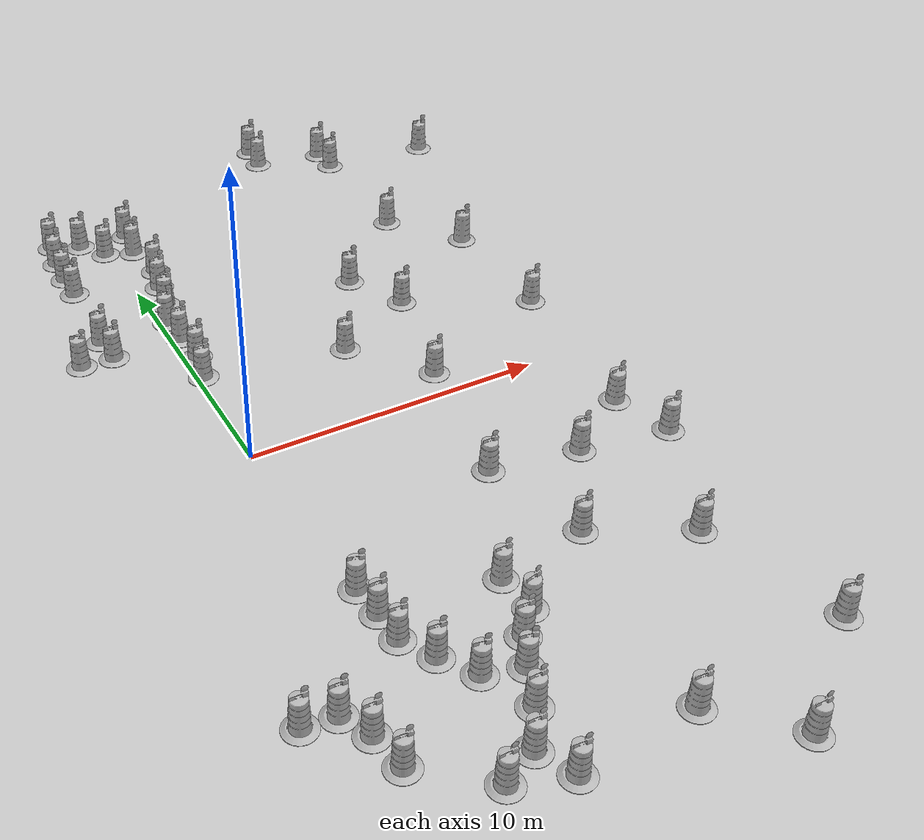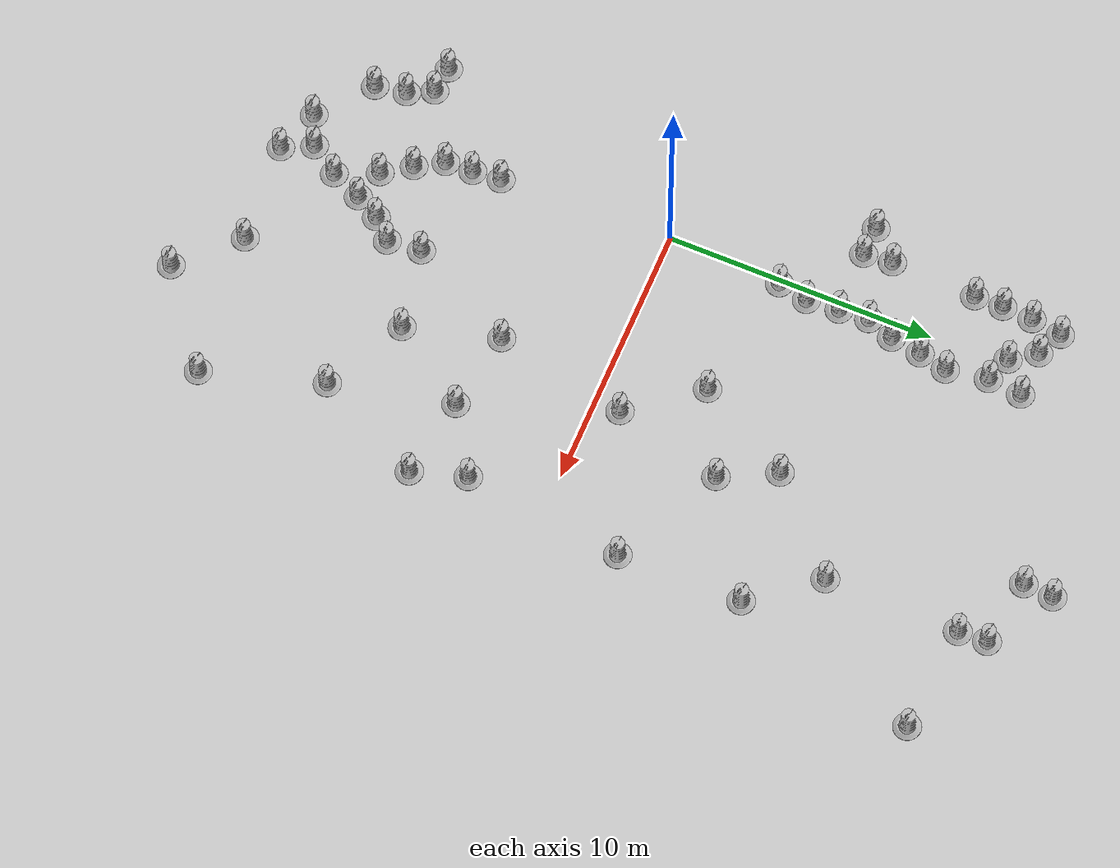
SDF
<sdf version="1.4">
 <world name="IGVC_Advanced_Course">
  <model name="Construction Barrel">
   <link name="link">
    <inertial>
     <pose>0 0 0.4 0 -0 0</pose>
     <mass>500</mass>
     <inertia><ixx>51.2096</ixx><iyy>51.2096</iyy><izz>25</izz><ixy>0</ixy><ixz>0</ixz><iyz>0</iyz></inertia>
    </inertial>
    <collision name="collision">
     <geometry><mesh><uri>model://construction_barrel/meshes/construction_barrel.dae</uri></mesh></geometry>
    </collision>
    <visual name="visual">
     <geometry><mesh><uri>model://construction_barrel/meshes/construction_barrel.dae</uri></mesh></geometry>
    </visual>
    <velocity_decay><linear>0</linear><angular>0</angular></velocity_decay>
   </link>
   <pose>2.90937 -10.9413 0.081 2e-06 1.05879e-22 -0.206638</pose>
   <static>0</static>
  </model>
  <model name="Construction Barrel_0">
   <link name="link">
    <inertial>
     <pose>0 0 0.4 0 -0 0</pose>
     <mass>500</mass>
     <inertia><ixx>51.2096</ixx><iyy>51.2096</iyy><izz>25</izz><ixy>0</ixy><ixz>0</ixz><iyz>0</iyz></inertia>
    </inertial>
    <collision name="collision">
     <geometry><mesh><uri>model://construction_barrel/meshes/construction_barrel.dae</uri></mesh></geometry>
    </collision>
    <visual name="visual">
     <geometry><mesh><uri>model://construction_barrel/meshes/construction_barrel.dae</uri></mesh></geometry>
    </visual>
    <velocity_decay><linear>0</linear><angular>0</angular></velocity_decay>
   </link>
   <pose>3.4058 -10.0126 0.080999 -2e-06 -3e-06 -0.053736</pose>
   <static>0</static>
  </model>
  <model name="Construction Barrel_1">
   <link name="link">
    <inertial>
     <pose>0 0 0.4 0 -0 0</pose>
     <mass>500</mass>
     <inertia><ixx>51.2096</ixx><iyy>51.2096</iyy><izz>25</izz><ixy>0</ixy><ixz>0</ixz><iyz>0</iyz></inertia>
    </inertial>
    <collision name="collision">
     <geometry><mesh><uri>model://construction_barrel/meshes/construction_barrel.dae</uri></mesh></geometry>
    </collision>
    <visual name="visual">
     <geometry><mesh><uri>model://construction_barrel/meshes/construction_barrel.dae</uri></mesh></geometry>
    </visual>
    <velocity_decay><linear>0</linear><angular>0</angular></velocity_decay>
   </link>
   <pose>4.10507 -9.27505 0.080999 -1e-06 -2e-06 0.216739</pose>
   <static>0</static>
  </model>
  <model name="Construction Barrel_2">
   <link name="link">
    <inertial>
     <pose>0 0 0.4 0 -0 0</pose>
     <mass>500</mass>
     <inertia><ixx>51.2096</ixx><iyy>51.2096</iyy><izz>25</izz><ixy>0</ixy><ixz>0</ixz><iyz>0</iyz></inertia>
    </inertial>
    <collision name="collision">
     <geometry><mesh><uri>model://construction_barrel/meshes/construction_barrel.dae</uri></mesh></geometry>
    </collision>
    <visual name="visual">
     <geometry><mesh><uri>model://construction_barrel/meshes/construction_barrel.dae</uri></mesh></geometry>
    </visual>
    <velocity_decay><linear>0</linear><angular>0</angular></velocity_decay>
   </link>
   <pose>3.97762 -7.99254 0.080999 -1e-06 -3e-06 -0.029562</pose>
   <static>0</static>
  </model>
  <model name="Construction Barrel_3">
   <link name="link">
    <inertial>
     <pose>0 0 0.4 0 -0 0</pose>
     <mass>500</mass>
     <inertia><ixx>51.2096</ixx><iyy>51.2096</iyy><izz>25</izz><ixy>0</ixy><ixz>0</ixz><iyz>0</iyz></inertia>
    </inertial>
    <collision name="collision">
     <geometry><mesh><uri>model://construction_barrel/meshes/construction_barrel.dae</uri></mesh></geometry>
    </collision>
    <visual name="visual">
     <geometry><mesh><uri>model://construction_barrel/meshes/construction_barrel.dae</uri></mesh></geometry>
    </visual>
    <velocity_decay><linear>0</linear><angular>0</angular></velocity_decay>
   </link>
   <pose>0.55482 -13.7328 0.080999 -1e-06 -3e-06 -0.003573</pose>
   <static>0</static>
  </model>
  <model name="Construction Barrel_4">
   <link name="link">
    <inertial>
     <pose>0 0 0.4 0 -0 0</pose>
     <mass>500</mass>
     <inertia><ixx>51.2096</ixx><iyy>51.2096</iyy><izz>25</izz><ixy>0</ixy><ixz>0</ixz><iyz>0</iyz></inertia>
    </inertial>
    <collision name="collision">
     <geometry><mesh><uri>model://construction_barrel/meshes/construction_barrel.dae</uri></mesh></geometry>
    </collision>
    <visual name="visual">
     <geometry><mesh><uri>model://construction_barrel/meshes/construction_barrel.dae</uri></mesh></geometry>
    </visual>
    <velocity_decay><linear>0</linear><angular>0</angular></velocity_decay>
   </link>
   <pose>1.67439 -13.2098 0.080999 -2e-06 -4e-06 -0.033039</pose>
   <static>0</static>
  </model>
  <model name="Construction Barrel_5">
   <link name="link">
    <inertial>
     <pose>0 0 0.4 0 -0 0</pose>
     <mass>500</mass>
     <inertia><ixx>51.2096</ixx><iyy>51.2096</iyy><izz>25</izz><ixy>0</ixy><ixz>0</ixz><iyz>0</iyz></inertia>
    </inertial>
    <collision name="collision">
     <geometry><mesh><uri>model://construction_barrel/meshes/construction_barrel.dae</uri></mesh></geometry>
    </collision>
    <visual name="visual">
     <geometry><mesh><uri>model://construction_barrel/meshes/construction_barrel.dae</uri></mesh></geometry>
    </visual>
    <velocity_decay><linear>0</linear><angular>0</angular></velocity_decay>
   </link>
   <pose>2.21677 -14.2989 0.080999 -2e-06 -4e-06 -0.077354</pose>
   <static>0</static>
  </model>
  <model name="Construction Barrel_6">
   <link name="link">
    <inertial>
     <pose>0 0 0.4 0 -0 0</pose>
     <mass>500</mass>
     <inertia><ixx>51.2096</ixx><iyy>51.2096</iyy><izz>25</izz><ixy>0</ixy><ixz>0</ixz><iyz>0</iyz></inertia>
    </inertial>
    <collision name="collision">
     <geometry><mesh><uri>model://construction_barrel/meshes/construction_barrel.dae</uri></mesh></geometry>
    </collision>
    <visual name="visual">
     <geometry><mesh><uri>model://construction_barrel/meshes/construction_barrel.dae</uri></mesh></geometry>
    </visual>
    <velocity_decay><linear>0</linear><angular>0</angular></velocity_decay>
   </link>
   <pose>7.98804 -15.9905 0.080999 5e-06 6.61744e-24 -0.006168</pose>
   <static>0</static>
  </model>
  <model name="Construction Barrel_7">
   <link name="link">
    <inertial>
     <pose>0 0 0.4 0 -0 0</pose>
     <mass>500</mass>
     <inertia><ixx>51.2096</ixx><iyy>51.2096</iyy><izz>25</izz><ixy>0</ixy><ixz>0</ixz><iyz>0</iyz></inertia>
    </inertial>
    <collision name="collision">
     <geometry><mesh><uri>model://construction_barrel/meshes/construction_barrel.dae</uri></mesh></geometry>
    </collision>
    <visual name="visual">
     <geometry><mesh><uri>model://construction_barrel/meshes/construction_barrel.dae</uri></mesh></geometry>
    </visual>
    <velocity_decay><linear>0</linear><angular>0</angular></velocity_decay>
   </link>
   <pose>5.97341 -14.0029 0.080999 3e-06 1e-06 -0.061146</pose>
   <static>0</static>
  </model>
  <model name="Construction Barrel_8">
   <link name="link">
    <inertial>
     <pose>0 0 0.4 0 -0 0</pose>
     <mass>500</mass>
     <inertia><ixx>51.2096</ixx><iyy>51.2096</iyy><izz>25</izz><ixy>0</ixy><ixz>0</ixz><iyz>0</iyz></inertia>
    </inertial>
    <collision name="collision">
     <geometry><mesh><uri>model://construction_barrel/meshes/construction_barrel.dae</uri></mesh></geometry>
    </collision>
    <visual name="visual">
     <geometry><mesh><uri>model://construction_barrel/meshes/construction_barrel.dae</uri></mesh></geometry>
    </visual>
    <velocity_decay><linear>0</linear><angular>0</angular></velocity_decay>
   </link>
   <pose>11.3381 -13.3903 0.080999 0 -3e-06 -0.1961</pose>
   <static>0</static>
  </model>
  <model name="Construction Barrel_30">
   <link name="link">
    <inertial>
     <pose>0 0 0.4 0 -0 0</pose>
     <mass>500</mass>
     <inertia><ixx>51.2096</ixx><iyy>51.2096</iyy><izz>25</izz><ixy>0</ixy><ixz>0</ixz><iyz>0</iyz></inertia>
    </inertial>
    <collision name="collision">
     <geometry><mesh><uri>model://construction_barrel/meshes/construction_barrel.dae</uri></mesh></geometry>
    </collision>
    <visual name="visual">
     <geometry><mesh><uri>model://construction_barrel/meshes/construction_barrel.dae</uri></mesh></geometry>
    </visual>
    <velocity_decay><linear>0</linear><angular>0</angular></velocity_decay>
   </link>
   <pose>6.00139 -3.99795 0.081 -1e-06 -2e-06 -0.034864</pose>
   <static>0</static>
  </model>
  <model name="Construction Barrel_31">
   <link name="link">
    <inertial>
     <pose>0 0 0.4 0 -0 0</pose>
     <mass>500</mass>
     <inertia><ixx>51.2096</ixx><iyy>51.2096</iyy><izz>25</izz><ixy>0</ixy><ixz>0</ixz><iyz>0</iyz></inertia>
    </inertial>
    <collision name="collision">
     <geometry><mesh><uri>model://construction_barrel/meshes/construction_barrel.dae</uri></mesh></geometry>
    </collision>
    <visual name="visual">
     <geometry><mesh><uri>model://construction_barrel/meshes/construction_barrel.dae</uri></mesh></geometry>
    </visual>
    <velocity_decay><linear>0</linear><angular>0</angular></velocity_decay>
   </link>
   <pose>6.98086 -7.43129 0.080999 -1e-06 -3e-06 -0.013448</pose>
   <static>0</static>
  </model>
  <model name="Construction Barrel_32">
   <link name="link">
    <inertial>
     <pose>0 0 0.4 0 -0 0</pose>
     <mass>500</mass>
     <inertia><ixx>51.2096</ixx><iyy>51.2096</iyy><izz>25</izz><ixy>0</ixy><ixz>0</ixz><iyz>0</iyz></inertia>
    </inertial>
    <collision name="collision">
     <geometry><mesh><uri>model://construction_barrel/meshes/construction_barrel.dae</uri></mesh></geometry>
    </collision>
    <visual name="visual">
     <geometry><mesh><uri>model://construction_barrel/meshes/construction_barrel.dae</uri></mesh></geometry>
    </visual>
    <velocity_decay><linear>0</linear><angular>0</angular></velocity_decay>
   </link>
   <pose>8.94769 -4.48615 0.080999 -1e-06 -3e-06 -0.121942</pose>
   <static>0</static>
  </model>
  <model name="Construction Barrel_33">
   <link name="link">
    <inertial>
     <pose>0 0 0.4 0 -0 0</pose>
     <mass>500</mass>
     <inertia><ixx>51.2096</ixx><iyy>51.2096</iyy><izz>25</izz><ixy>0</ixy><ixz>0</ixz><iyz>0</iyz></inertia>
    </inertial>
    <collision name="collision">
     <geometry><mesh><uri>model://construction_barrel/meshes/construction_barrel.dae</uri></mesh></geometry>
    </collision>
    <visual name="visual">
     <geometry><mesh><uri>model://construction_barrel/meshes/construction_barrel.dae</uri></mesh></geometry>
    </visual>
    <velocity_decay><linear>0</linear><angular>0</angular></velocity_decay>
   </link>
   <pose>9.99154 -8.99122 0.080999 -1e-06 -5e-06 -0.041963</pose>
   <static>0</static>
  </model>
  <model name="Construction Barrel_34">
   <link name="link">
    <inertial>
     <pose>0 0 0.4 0 -0 0</pose>
     <mass>500</mass>
     <inertia><ixx>51.2096</ixx><iyy>51.2096</iyy><izz>25</izz><ixy>0</ixy><ixz>0</ixz><iyz>0</iyz></inertia>
    </inertial>
    <collision name="collision">
     <geometry><mesh><uri>model://construction_barrel/meshes/construction_barrel.dae</uri></mesh></geometry>
    </collision>
    <visual name="visual">
     <geometry><mesh><uri>model://construction_barrel/meshes/construction_barrel.dae</uri></mesh></geometry>
    </visual>
    <velocity_decay><linear>0</linear><angular>0</angular></velocity_decay>
   </link>
   <pose>11.3293 -2.97512 0.080999 4e-06 -2.64698e-23 0.058727</pose>
   <static>0</static>
  </model>
  <model name="Construction Barrel_37">
   <link name="link">
    <inertial>
     <pose>0 0 0.4 0 -0 0</pose>
     <mass>500</mass>
     <inertia><ixx>51.2096</ixx><iyy>51.2096</iyy><izz>25</izz><ixy>0</ixy><ixz>0</ixz><iyz>0</iyz></inertia>
    </inertial>
    <collision name="collision">
     <geometry><mesh><uri>model://construction_barrel/meshes/construction_barrel.dae</uri></mesh></geometry>
    </collision>
    <visual name="visual">
     <geometry><mesh><uri>model://construction_barrel/meshes/construction_barrel.dae</uri></mesh></geometry>
    </visual>
    <velocity_decay><linear>0</linear><angular>0</angular></velocity_decay>
   </link>
   <pose>11.9056 7.62328 0.080999 3e-06 1.05879e-22 -0.225591</pose>
   <static>0</static>
  </model>
  <model name="Construction Barrel_38">
   <link name="link">
    <inertial>
     <pose>0 0 0.4 0 -0 0</pose>
     <mass>500</mass>
     <inertia><ixx>51.2096</ixx><iyy>51.2096</iyy><izz>25</izz><ixy>0</ixy><ixz>0</ixz><iyz>0</iyz></inertia>
    </inertial>
    <collision name="collision">
     <geometry><mesh><uri>model://construction_barrel/meshes/construction_barrel.dae</uri></mesh></geometry>
    </collision>
    <visual name="visual">
     <geometry><mesh><uri>model://construction_barrel/meshes/construction_barrel.dae</uri></mesh></geometry>
    </visual>
    <velocity_decay><linear>0</linear><angular>0</angular></velocity_decay>
   </link>
   <pose>7.94259 5.03609 0.080999 2e-06 5.29396e-23 -0.127299</pose>
   <static>0</static>
  </model>
  <model name="Construction Barrel_39">
   <link name="link">
    <inertial>
     <pose>0 0 0.4 0 -0 0</pose>
     <mass>500</mass>
     <inertia><ixx>51.2096</ixx><iyy>51.2096</iyy><izz>25</izz><ixy>0</ixy><ixz>0</ixz><iyz>0</iyz></inertia>
    </inertial>
    <collision name="collision">
     <geometry><mesh><uri>model://construction_barrel/meshes/construction_barrel.dae</uri></mesh></geometry>
    </collision>
    <visual name="visual">
     <geometry><mesh><uri>model://construction_barrel/meshes/construction_barrel.dae</uri></mesh></geometry>
    </visual>
    <velocity_decay><linear>0</linear><angular>0</angular></velocity_decay>
   </link>
   <pose>6.91708 7.04576 0.080997 -3e-06 -6e-06 -0.171022</pose>
   <static>0</static>
  </model>
  <model name="Construction Barrel_40">
   <link name="link">
    <inertial>
     <pose>0 0 0.4 0 -0 0</pose>
     <mass>500</mass>
     <inertia><ixx>51.2096</ixx><iyy>51.2096</iyy><izz>25</izz><ixy>0</ixy><ixz>0</ixz><iyz>0</iyz></inertia>
    </inertial>
    <collision name="collision">
     <geometry><mesh><uri>model://construction_barrel/meshes/construction_barrel.dae</uri></mesh></geometry>
    </collision>
    <visual name="visual">
     <geometry><mesh><uri>model://construction_barrel/meshes/construction_barrel.dae</uri></mesh></geometry>
    </visual>
    <velocity_decay><linear>0</linear><angular>0</angular></velocity_decay>
   </link>
   <pose>10.0052 10.0115 0.080999 -1e-06 -3e-06 -0.002227</pose>
   <static>0</static>
  </model>
  <model name="Construction Barrel_41">
   <link name="link">
    <inertial>
     <pose>0 0 0.4 0 -0 0</pose>
     <mass>500</mass>
     <inertia><ixx>51.2096</ixx><iyy>51.2096</iyy><izz>25</izz><ixy>0</ixy><ixz>0</ixz><iyz>0</iyz></inertia>
    </inertial>
    <collision name="collision">
     <geometry><mesh><uri>model://construction_barrel/meshes/construction_barrel.dae</uri></mesh></geometry>
    </collision>
    <visual name="visual">
     <geometry><mesh><uri>model://construction_barrel/meshes/construction_barrel.dae</uri></mesh></geometry>
    </visual>
    <velocity_decay><linear>0</linear><angular>0</angular></velocity_decay>
   </link>
   <pose>11.9401 -4.96461 0.080999 4e-06 1e-06 -0.112681</pose>
   <static>0</static>
  </model>
  <model name="Construction Barrel_46">
   <link name="link">
    <inertial>
     <pose>0 0 0.4 0 -0 0</pose>
     <mass>500</mass>
     <inertia><ixx>51.2096</ixx><iyy>51.2096</iyy><izz>25</izz><ixy>0</ixy><ixz>0</ixz><iyz>0</iyz></inertia>
    </inertial>
    <collision name="collision">
     <geometry><mesh><uri>model://construction_barrel/meshes/construction_barrel.dae</uri></mesh></geometry>
    </collision>
    <visual name="visual">
     <geometry><mesh><uri>model://construction_barrel/meshes/construction_barrel.dae</uri></mesh></geometry>
    </visual>
    <velocity_decay><linear>0</linear><angular>0</angular></velocity_decay>
   </link>
   <pose>4.95895 3.48135 0.080999 3e-06 -2.64698e-23 -0.07424</pose>
   <static>0</static>
  </model>
  <model name="Construction Barrel_48">
   <link name="link">
    <inertial>
     <pose>0 0 0.4 0 -0 0</pose>
     <mass>500</mass>
     <inertia><ixx>51.2096</ixx><iyy>51.2096</iyy><izz>25</izz><ixy>0</ixy><ixz>0</ixz><iyz>0</iyz></inertia>
    </inertial>
    <collision name="collision">
     <geometry><mesh><uri>model://construction_barrel/meshes/construction_barrel.dae</uri></mesh></geometry>
    </collision>
    <visual name="visual">
     <geometry><mesh><uri>model://construction_barrel/meshes/construction_barrel.dae</uri></mesh></geometry>
    </visual>
    <velocity_decay><linear>0</linear><angular>0</angular></velocity_decay>
   </link>
   <pose>11.9909 3.00122 0.080999 4e-06 2.64698e-23 -0.051828</pose>
   <static>0</static>
  </model>
  <model name="Construction Barrel_49">
   <link name="link">
    <inertial>
     <pose>0 0 0.4 0 -0 0</pose>
     <mass>500</mass>
     <inertia><ixx>51.2096</ixx><iyy>51.2096</iyy><izz>25</izz><ixy>0</ixy><ixz>0</ixz><iyz>0</iyz></inertia>
    </inertial>
    <collision name="collision">
     <geometry><mesh><uri>model://construction_barrel/meshes/construction_barrel.dae</uri></mesh></geometry>
    </collision>
    <visual name="visual">
     <geometry><mesh><uri>model://construction_barrel/meshes/construction_barrel.dae</uri></mesh></geometry>
    </visual>
    <velocity_decay><linear>0</linear><angular>0</angular></velocity_decay>
   </link>
   <pose>6.94748 0.957988 0.080999 -1e-06 -2e-06 -0.018603</pose>
   <static>0</static>
  </model>
  <model name="Construction Barrel_62">
   <link name="link">
    <inertial>
     <pose>0 0 0.4 0 -0 0</pose>
     <mass>500</mass>
     <inertia><ixx>51.2096</ixx><iyy>51.2096</iyy><izz>25</izz><ixy>0</ixy><ixz>0</ixz><iyz>0</iyz></inertia>
    </inertial>
    <collision name="collision">
     <geometry><mesh><uri>model://construction_barrel/meshes/construction_barrel.dae</uri></mesh></geometry>
    </collision>
    <visual name="visual">
     <geometry><mesh><uri>model://construction_barrel/meshes/construction_barrel.dae</uri></mesh></geometry>
    </visual>
    <velocity_decay><linear>0</linear><angular>0</angular></velocity_decay>
   </link>
   <pose>0.297624 -6.48419 0.080999 4e-06 2.11758e-22 -0.258614</pose>
   <static>0</static>
  </model>
  <model name="Construction Barrel_63">
   <link name="link">
    <inertial>
     <pose>0 0 0.4 0 -0 0</pose>
     <mass>500</mass>
     <inertia><ixx>51.2096</ixx><iyy>51.2096</iyy><izz>25</izz><ixy>0</ixy><ixz>0</ixz><iyz>0</iyz></inertia>
    </inertial>
    <collision name="collision">
     <geometry><mesh><uri>model://construction_barrel/meshes/construction_barrel.dae</uri></mesh></geometry>
    </collision>
    <visual name="visual">
     <geometry><mesh><uri>model://construction_barrel/meshes/construction_barrel.dae</uri></mesh></geometry>
    </visual>
    <velocity_decay><linear>0</linear><angular>0</angular></velocity_decay>
   </link>
   <pose>0.392312 -7.55312 0.081 2e-06 6.61744e-24 -0.029276</pose>
   <static>0</static>
  </model>
  <model name="Construction Barrel_64">
   <link name="link">
    <inertial>
     <pose>0 0 0.4 0 -0 0</pose>
     <mass>500</mass>
     <inertia><ixx>51.2096</ixx><iyy>51.2096</iyy><izz>25</izz><ixy>0</ixy><ixz>0</ixz><iyz>0</iyz></inertia>
    </inertial>
    <collision name="collision">
     <geometry><mesh><uri>model://construction_barrel/meshes/construction_barrel.dae</uri></mesh></geometry>
    </collision>
    <visual name="visual">
     <geometry><mesh><uri>model://construction_barrel/meshes/construction_barrel.dae</uri></mesh></geometry>
    </visual>
    <velocity_decay><linear>0</linear><angular>0</angular></velocity_decay>
   </link>
   <pose>0.442275 -8.5868 0.080999 -1e-06 -3e-06 -0.097452</pose>
   <static>0</static>
  </model>
  <model name="Construction Barrel_65">
   <link name="link">
    <inertial>
     <pose>0 0 0.4 0 -0 0</pose>
     <mass>500</mass>
     <inertia><ixx>51.2096</ixx><iyy>51.2096</iyy><izz>25</izz><ixy>0</ixy><ixz>0</ixz><iyz>0</iyz></inertia>
    </inertial>
    <collision name="collision">
     <geometry><mesh><uri>model://construction_barrel/meshes/construction_barrel.dae</uri></mesh></geometry>
    </collision>
    <visual name="visual">
     <geometry><mesh><uri>model://construction_barrel/meshes/construction_barrel.dae</uri></mesh></geometry>
    </visual>
    <velocity_decay><linear>0</linear><angular>0</angular></velocity_decay>
   </link>
   <pose>1.03397 -9.57755 0.080999 -1e-06 -2e-06 -0.109799</pose>
   <static>0</static>
  </model>
  <model name="Construction Barrel_66">
   <link name="link">
    <inertial>
     <pose>0 0 0.4 0 -0 0</pose>
     <mass>500</mass>
     <inertia><ixx>51.2096</ixx><iyy>51.2096</iyy><izz>25</izz><ixy>0</ixy><ixz>0</ixz><iyz>0</iyz></inertia>
    </inertial>
    <collision name="collision">
     <geometry><mesh><uri>model://construction_barrel/meshes/construction_barrel.dae</uri></mesh></geometry>
    </collision>
    <visual name="visual">
     <geometry><mesh><uri>model://construction_barrel/meshes/construction_barrel.dae</uri></mesh></geometry>
    </visual>
    <velocity_decay><linear>0</linear><angular>0</angular></velocity_decay>
   </link>
   <pose>1.73578 -10.5973 0.081 0 -1e-06 -0.170226</pose>
   <static>0</static>
  </model>
  <model name="Construction Barrel_67">
   <link name="link">
    <inertial>
     <pose>0 0 0.4 0 -0 0</pose>
     <mass>500</mass>
     <inertia><ixx>51.2096</ixx><iyy>51.2096</iyy><izz>25</izz><ixy>0</ixy><ixz>0</ixz><iyz>0</iyz></inertia>
    </inertial>
    <collision name="collision">
     <geometry><mesh><uri>model://construction_barrel/meshes/construction_barrel.dae</uri></mesh></geometry>
    </collision>
    <visual name="visual">
     <geometry><mesh><uri>model://construction_barrel/meshes/construction_barrel.dae</uri></mesh></geometry>
    </visual>
    <velocity_decay><linear>0</linear><angular>0</angular></velocity_decay>
   </link>
   <pose>2.41493 -12.1035 0.080999 3e-06 -0 -0.006086</pose>
   <static>0</static>
  </model>
  <model name="Construction Barrel_68">
   <link name="link">
    <inertial>
     <pose>0 0 0.4 0 -0 0</pose>
     <mass>500</mass>
     <inertia><ixx>51.2096</ixx><iyy>51.2096</iyy><izz>25</izz><ixy>0</ixy><ixz>0</ixz><iyz>0</iyz></inertia>
    </inertial>
    <collision name="collision">
     <geometry><mesh><uri>model://construction_barrel/meshes/construction_barrel.dae</uri></mesh></geometry>
    </collision>
    <visual name="visual">
     <geometry><mesh><uri>model://construction_barrel/meshes/construction_barrel.dae</uri></mesh></geometry>
    </visual>
    <velocity_decay><linear>0</linear><angular>0</angular></velocity_decay>
   </link>
   <pose>-3.02669 -9.98689 0.080999 -1e-06 -3e-06 -0.044264</pose>
   <static>0</static>
  </model>
  <model name="Construction Barrel_69">
   <link name="link">
    <inertial>
     <pose>0 0 0.4 0 -0 0</pose>
     <mass>500</mass>
     <inertia><ixx>51.2096</ixx><iyy>51.2096</iyy><izz>25</izz><ixy>0</ixy><ixz>0</ixz><iyz>0</iyz></inertia>
    </inertial>
    <collision name="collision">
     <geometry><mesh><uri>model://construction_barrel/meshes/construction_barrel.dae</uri></mesh></geometry>
    </collision>
    <visual name="visual">
     <geometry><mesh><uri>model://construction_barrel/meshes/construction_barrel.dae</uri></mesh></geometry>
    </visual>
    <velocity_decay><linear>0</linear><angular>0</angular></velocity_decay>
   </link>
   <pose>-2.01875 -10.0951 0.080999 -1e-06 -3e-06 -0.047414</pose>
   <static>0</static>
  </model>
  <model name="Construction Barrel_70">
   <link name="link">
    <inertial>
     <pose>0 0 0.4 0 -0 0</pose>
     <mass>500</mass>
     <inertia><ixx>51.2096</ixx><iyy>51.2096</iyy><izz>25</izz><ixy>0</ixy><ixz>0</ixz><iyz>0</iyz></inertia>
    </inertial>
    <collision name="collision">
     <geometry><mesh><uri>model://construction_barrel/meshes/construction_barrel.dae</uri></mesh></geometry>
    </collision>
    <visual name="visual">
     <geometry><mesh><uri>model://construction_barrel/meshes/construction_barrel.dae</uri></mesh></geometry>
    </visual>
    <velocity_decay><linear>0</linear><angular>0</angular></velocity_decay>
   </link>
   <pose>-1.56394 -11.0051 0.080999 3e-06 -0 -0.027221</pose>
   <static>0</static>
  </model>
  <model name="Construction Barrel_71">
   <link name="link">
    <inertial>
     <pose>0 0 0.4 0 -0 0</pose>
     <mass>500</mass>
     <inertia><ixx>51.2096</ixx><iyy>51.2096</iyy><izz>25</izz><ixy>0</ixy><ixz>0</ixz><iyz>0</iyz></inertia>
    </inertial>
    <collision name="collision">
     <geometry><mesh><uri>model://construction_barrel/meshes/construction_barrel.dae</uri></mesh></geometry>
    </collision>
    <visual name="visual">
     <geometry><mesh><uri>model://construction_barrel/meshes/construction_barrel.dae</uri></mesh></geometry>
    </visual>
    <velocity_decay><linear>0</linear><angular>0</angular></velocity_decay>
   </link>
   <pose>-1.34915 -12.1632 0.080999 3e-06 -5.29396e-23 -0.093255</pose>
   <static>0</static>
  </model>
  <model name="Construction Barrel_89">
   <link name="link">
    <inertial>
     <pose>0 0 0.4 0 -0 0</pose>
     <mass>500</mass>
     <inertia><ixx>51.2096</ixx><iyy>51.2096</iyy><izz>25</izz><ixy>0</ixy><ixz>0</ixz><iyz>0</iyz></inertia>
    </inertial>
    <collision name="collision">
     <geometry><mesh><uri>model://construction_barrel/meshes/construction_barrel.dae</uri></mesh></geometry>
    </collision>
    <visual name="visual">
     <geometry><mesh><uri>model://construction_barrel/meshes/construction_barrel.dae</uri></mesh></geometry>
    </visual>
    <velocity_decay><linear>0</linear><angular>0</angular></velocity_decay>
   </link>
   <pose>13.943 14.6482 0.080999 5e-06 -0 -0.207796</pose>
   <static>0</static>
  </model>
  <model name="Construction Barrel_91">
   <link name="link">
    <inertial>
     <pose>0 0 0.4 0 -0 0</pose>
     <mass>500</mass>
     <inertia><ixx>51.2096</ixx><iyy>51.2096</iyy><izz>25</izz><ixy>0</ixy><ixz>0</ixz><iyz>0</iyz></inertia>
    </inertial>
    <collision name="collision">
     <geometry><mesh><uri>model://construction_barrel/meshes/construction_barrel.dae</uri></mesh></geometry>
    </collision>
    <visual name="visual">
     <geometry><mesh><uri>model://construction_barrel/meshes/construction_barrel.dae</uri></mesh></geometry>
    </visual>
    <velocity_decay><linear>0</linear><angular>0</angular></velocity_decay>
   </link>
   <pose>10.0235 14.979 0.080999 3e-06 -2.64698e-23 0.07691</pose>
   <static>0</static>
  </model>
  <model name="Construction Barrel_92">
   <link name="link">
    <inertial>
     <pose>0 0 0.4 0 -0 0</pose>
     <mass>500</mass>
     <inertia><ixx>51.2096</ixx><iyy>51.2096</iyy><izz>25</izz><ixy>0</ixy><ixz>0</ixz><iyz>0</iyz></inertia>
    </inertial>
    <collision name="collision">
     <geometry><mesh><uri>model://construction_barrel/meshes/construction_barrel.dae</uri></mesh></geometry>
    </collision>
    <visual name="visual">
     <geometry><mesh><uri>model://construction_barrel/meshes/construction_barrel.dae</uri></mesh></geometry>
    </visual>
    <velocity_decay><linear>0</linear><angular>0</angular></velocity_decay>
   </link>
   <pose>9.97333 16.0491 0.080999 3e-06 1e-06 -0.181183</pose>
   <static>0</static>
  </model>
  <model name="Construction Barrel_93">
   <link name="link">
    <inertial>
     <pose>0 0 0.4 0 -0 0</pose>
     <mass>500</mass>
     <inertia><ixx>51.2096</ixx><iyy>51.2096</iyy><izz>25</izz><ixy>0</ixy><ixz>0</ixz><iyz>0</iyz></inertia>
    </inertial>
    <collision name="collision">
     <geometry><mesh><uri>model://construction_barrel/meshes/construction_barrel.dae</uri></mesh></geometry>
    </collision>
    <visual name="visual">
     <geometry><mesh><uri>model://construction_barrel/meshes/construction_barrel.dae</uri></mesh></geometry>
    </visual>
    <velocity_decay><linear>0</linear><angular>0</angular></velocity_decay>
   </link>
   <pose>7.55479 17.5469 0.080998 2e-06 -6e-06 -0.034691</pose>
   <static>0</static>
  </model>
  <model name="Construction Barrel_94">
   <link name="link">
    <inertial>
     <pose>0 0 0.4 0 -0 0</pose>
     <mass>500</mass>
     <inertia><ixx>51.2096</ixx><iyy>51.2096</iyy><izz>25</izz><ixy>0</ixy><ixz>0</ixz><iyz>0</iyz></inertia>
    </inertial>
    <collision name="collision">
     <geometry><mesh><uri>model://construction_barrel/meshes/construction_barrel.dae</uri></mesh></geometry>
    </collision>
    <visual name="visual">
     <geometry><mesh><uri>model://construction_barrel/meshes/construction_barrel.dae</uri></mesh></geometry>
    </visual>
    <velocity_decay><linear>0</linear><angular>0</angular></velocity_decay>
   </link>
   <pose>7.48669 16.4438 0.080999 -1e-06 -2e-06 -0.067821</pose>
   <static>0</static>
  </model>
  <model name="Construction Barrel_95">
   <link name="link">
    <inertial>
     <pose>0 0 0.4 0 -0 0</pose>
     <mass>500</mass>
     <inertia><ixx>51.2096</ixx><iyy>51.2096</iyy><izz>25</izz><ixy>0</ixy><ixz>0</ixz><iyz>0</iyz></inertia>
    </inertial>
    <collision name="collision">
     <geometry><mesh><uri>model://construction_barrel/meshes/construction_barrel.dae</uri></mesh></geometry>
    </collision>
    <visual name="visual">
     <geometry><mesh><uri>model://construction_barrel/meshes/construction_barrel.dae</uri></mesh></geometry>
    </visual>
    <velocity_decay><linear>0</linear><angular>0</angular></velocity_decay>
   </link>
   <pose>0.856205 13.7524 0.080999 -1e-06 -3e-06 -0.068206</pose>
   <static>0</static>
  </model>
  <model name="Construction Barrel_96">
   <link name="link">
    <inertial>
     <pose>0 0 0.4 0 -0 0</pose>
     <mass>500</mass>
     <inertia><ixx>51.2096</ixx><iyy>51.2096</iyy><izz>25</izz><ixy>0</ixy><ixz>0</ixz><iyz>0</iyz></inertia>
    </inertial>
    <collision name="collision">
     <geometry><mesh><uri>model://construction_barrel/meshes/construction_barrel.dae</uri></mesh></geometry>
    </collision>
    <visual name="visual">
     <geometry><mesh><uri>model://construction_barrel/meshes/construction_barrel.dae</uri></mesh></geometry>
    </visual>
    <velocity_decay><linear>0</linear><angular>0</angular></velocity_decay>
   </link>
   <pose>0.740906 12.4864 0.080999 3e-06 -0 -0.029594</pose>
   <static>0</static>
  </model>
  <model name="Construction Barrel_97">
   <link name="link">
    <inertial>
     <pose>0 0 0.4 0 -0 0</pose>
     <mass>500</mass>
     <inertia><ixx>51.2096</ixx><iyy>51.2096</iyy><izz>25</izz><ixy>0</ixy><ixz>0</ixz><iyz>0</iyz></inertia>
    </inertial>
    <collision name="collision">
     <geometry><mesh><uri>model://construction_barrel/meshes/construction_barrel.dae</uri></mesh></geometry>
    </collision>
    <visual name="visual">
     <geometry><mesh><uri>model://construction_barrel/meshes/construction_barrel.dae</uri></mesh></geometry>
    </visual>
    <velocity_decay><linear>0</linear><angular>0</angular></velocity_decay>
   </link>
   <pose>0.99867 10.9485 0.080999 3e-06 -2.64698e-23 0.034302</pose>
   <static>0</static>
  </model>
  <model name="Construction Barrel_98">
   <link name="link">
    <inertial>
     <pose>0 0 0.4 0 -0 0</pose>
     <mass>500</mass>
     <inertia><ixx>51.2096</ixx><iyy>51.2096</iyy><izz>25</izz><ixy>0</ixy><ixz>0</ixz><iyz>0</iyz></inertia>
    </inertial>
    <collision name="collision">
     <geometry><mesh><uri>model://construction_barrel/meshes/construction_barrel.dae</uri></mesh></geometry>
    </collision>
    <visual name="visual">
     <geometry><mesh><uri>model://construction_barrel/meshes/construction_barrel.dae</uri></mesh></geometry>
    </visual>
    <velocity_decay><linear>0</linear><angular>0</angular></velocity_decay>
   </link>
   <pose>0.765593 9.89657 0.080999 4e-06 -0 0.089085</pose>
   <static>0</static>
  </model>
  <model name="Construction Barrel_99">
   <link name="link">
    <inertial>
     <pose>0 0 0.4 0 -0 0</pose>
     <mass>500</mass>
     <inertia><ixx>51.2096</ixx><iyy>51.2096</iyy><izz>25</izz><ixy>0</ixy><ixz>0</ixz><iyz>0</iyz></inertia>
    </inertial>
    <collision name="collision">
     <geometry><mesh><uri>model://construction_barrel/meshes/construction_barrel.dae</uri></mesh></geometry>
    </collision>
    <visual name="visual">
     <geometry><mesh><uri>model://construction_barrel/meshes/construction_barrel.dae</uri></mesh></geometry>
    </visual>
    <velocity_decay><linear>0</linear><angular>0</angular></velocity_decay>
   </link>
   <pose>0.595281 8.7391 0.080999 -2e-06 -4e-06 -0.1697</pose>
   <static>0</static>
  </model>
  <model name="Construction Barrel_100">
   <link name="link">
    <inertial>
     <pose>0 0 0.4 0 -0 0</pose>
     <mass>500</mass>
     <inertia><ixx>51.2096</ixx><iyy>51.2096</iyy><izz>25</izz><ixy>0</ixy><ixz>0</ixz><iyz>0</iyz></inertia>
    </inertial>
    <collision name="collision">
     <geometry><mesh><uri>model://construction_barrel/meshes/construction_barrel.dae</uri></mesh></geometry>
    </collision>
    <visual name="visual">
     <geometry><mesh><uri>model://construction_barrel/meshes/construction_barrel.dae</uri></mesh></geometry>
    </visual>
    <velocity_decay><linear>0</linear><angular>0</angular></velocity_decay>
   </link>
   <pose>0.245194 7.72646 0.080999 3e-06 -0 -0.158722</pose>
   <static>0</static>
  </model>
  <model name="Construction Barrel_101">
   <link name="link">
    <inertial>
     <pose>0 0 0.4 0 -0 0</pose>
     <mass>500</mass>
     <inertia><ixx>51.2096</ixx><iyy>51.2096</iyy><izz>25</izz><ixy>0</ixy><ixz>0</ixz><iyz>0</iyz></inertia>
    </inertial>
    <collision name="collision">
     <geometry><mesh><uri>model://construction_barrel/meshes/construction_barrel.dae</uri></mesh></geometry>
    </collision>
    <visual name="visual">
     <geometry><mesh><uri>model://construction_barrel/meshes/construction_barrel.dae</uri></mesh></geometry>
    </visual>
    <velocity_decay><linear>0</linear><angular>0</angular></velocity_decay>
   </link>
   <pose>0.313482 6.61827 0.080999 -1e-06 -3e-06 -0.090521</pose>
   <static>0</static>
  </model>
  <model name="Construction Barrel_102">
   <link name="link">
    <inertial>
     <pose>0 0 0.4 0 -0 0</pose>
     <mass>500</mass>
     <inertia><ixx>51.2096</ixx><iyy>51.2096</iyy><izz>25</izz><ixy>0</ixy><ixz>0</ixz><iyz>0</iyz></inertia>
    </inertial>
    <collision name="collision">
     <geometry><mesh><uri>model://construction_barrel/meshes/construction_barrel.dae</uri></mesh></geometry>
    </collision>
    <visual name="visual">
     <geometry><mesh><uri>model://construction_barrel/meshes/construction_barrel.dae</uri></mesh></geometry>
    </visual>
    <velocity_decay><linear>0</linear><angular>0</angular></velocity_decay>
   </link>
   <pose>-0.222158 12.8522 0.080999 -1e-06 -3e-06 -0.047663</pose>
   <static>0</static>
  </model>
  <model name="Construction Barrel_103">
   <link name="link">
    <inertial>
     <pose>0 0 0.4 0 -0 0</pose>
     <mass>500</mass>
     <inertia><ixx>51.2096</ixx><iyy>51.2096</iyy><izz>25</izz><ixy>0</ixy><ixz>0</ixz><iyz>0</iyz></inertia>
    </inertial>
    <collision name="collision">
     <geometry><mesh><uri>model://construction_barrel/meshes/construction_barrel.dae</uri></mesh></geometry>
    </collision>
    <visual name="visual">
     <geometry><mesh><uri>model://construction_barrel/meshes/construction_barrel.dae</uri></mesh></geometry>
    </visual>
    <velocity_decay><linear>0</linear><angular>0</angular></velocity_decay>
   </link>
   <pose>-0.876083 13.7674 0.080999 3e-06 -0 -0.202298</pose>
   <static>0</static>
  </model>
  <model name="Construction Barrel_104">
   <link name="link">
    <inertial>
     <pose>0 0 0.4 0 -0 0</pose>
     <mass>500</mass>
     <inertia><ixx>51.2096</ixx><iyy>51.2096</iyy><izz>25</izz><ixy>0</ixy><ixz>0</ixz><iyz>0</iyz></inertia>
    </inertial>
    <collision name="collision">
     <geometry><mesh><uri>model://construction_barrel/meshes/construction_barrel.dae</uri></mesh></geometry>
    </collision>
    <visual name="visual">
     <geometry><mesh><uri>model://construction_barrel/meshes/construction_barrel.dae</uri></mesh></geometry>
    </visual>
    <velocity_decay><linear>0</linear><angular>0</angular></velocity_decay>
   </link>
   <pose>-1.83823 14.223 0.080999 3e-06 -0 -0.020437</pose>
   <static>0</static>
  </model>
  <model name="Construction Barrel_105">
   <link name="link">
    <inertial>
     <pose>0 0 0.4 0 -0 0</pose>
     <mass>500</mass>
     <inertia><ixx>51.2096</ixx><iyy>51.2096</iyy><izz>25</izz><ixy>0</ixy><ixz>0</ixz><iyz>0</iyz></inertia>
    </inertial>
    <collision name="collision">
     <geometry><mesh><uri>model://construction_barrel/meshes/construction_barrel.dae</uri></mesh></geometry>
    </collision>
    <visual name="visual">
     <geometry><mesh><uri>model://construction_barrel/meshes/construction_barrel.dae</uri></mesh></geometry>
    </visual>
    <velocity_decay><linear>0</linear><angular>0</angular></velocity_decay>
   </link>
   <pose>-2.00902 13.0754 0.080999 -1e-06 -3e-06 -0.031412</pose>
   <static>0</static>
  </model>
  <model name="Construction Barrel_106">
   <link name="link">
    <inertial>
     <pose>0 0 0.4 0 -0 0</pose>
     <mass>500</mass>
     <inertia><ixx>51.2096</ixx><iyy>51.2096</iyy><izz>25</izz><ixy>0</ixy><ixz>0</ixz><iyz>0</iyz></inertia>
    </inertial>
    <collision name="collision">
     <geometry><mesh><uri>model://construction_barrel/meshes/construction_barrel.dae</uri></mesh></geometry>
    </collision>
    <visual name="visual">
     <geometry><mesh><uri>model://construction_barrel/meshes/construction_barrel.dae</uri></mesh></geometry>
    </visual>
    <velocity_decay><linear>0</linear><angular>0</angular></velocity_decay>
   </link>
   <pose>-2.05499 11.9412 0.080999 2e-06 5.29396e-23 -0.20771</pose>
   <static>0</static>
  </model>
  <model name="Construction Barrel_107">
   <link name="link">
    <inertial>
     <pose>0 0 0.4 0 -0 0</pose>
     <mass>500</mass>
     <inertia><ixx>51.2096</ixx><iyy>51.2096</iyy><izz>25</izz><ixy>0</ixy><ixz>0</ixz><iyz>0</iyz></inertia>
    </inertial>
    <collision name="collision">
     <geometry><mesh><uri>model://construction_barrel/meshes/construction_barrel.dae</uri></mesh></geometry>
    </collision>
    <visual name="visual">
     <geometry><mesh><uri>model://construction_barrel/meshes/construction_barrel.dae</uri></mesh></geometry>
    </visual>
    <velocity_decay><linear>0</linear><angular>0</angular></velocity_decay>
   </link>
   <pose>-2.04294 10.87 0.080999 3e-06 2.64698e-23 -0.075424</pose>
   <static>0</static>
  </model>
  <model name="Construction Barrel_108">
   <link name="link">
    <inertial>
     <pose>0 0 0.4 0 -0 0</pose>
     <mass>500</mass>
     <inertia><ixx>51.2096</ixx><iyy>51.2096</iyy><izz>25</izz><ixy>0</ixy><ixz>0</ixz><iyz>0</iyz></inertia>
    </inertial>
    <collision name="collision">
     <geometry><mesh><uri>model://construction_barrel/meshes/construction_barrel.dae</uri></mesh></geometry>
    </collision>
    <visual name="visual">
     <geometry><mesh><uri>model://construction_barrel/meshes/construction_barrel.dae</uri></mesh></geometry>
    </visual>
    <velocity_decay><linear>0</linear><angular>0</angular></velocity_decay>
   </link>
   <pose>-2.13788 7.68588 0.080999 3e-06 3.30872e-24 -0.009006</pose>
   <static>0</static>
  </model>
  <model name="Construction Barrel_109">
   <link name="link">
    <inertial>
     <pose>0 0 0.4 0 -0 0</pose>
     <mass>500</mass>
     <inertia><ixx>51.2096</ixx><iyy>51.2096</iyy><izz>25</izz><ixy>0</ixy><ixz>0</ixz><iyz>0</iyz></inertia>
    </inertial>
    <collision name="collision">
     <geometry><mesh><uri>model://construction_barrel/meshes/construction_barrel.dae</uri></mesh></geometry>
    </collision>
    <visual name="visual">
     <geometry><mesh><uri>model://construction_barrel/meshes/construction_barrel.dae</uri></mesh></geometry>
    </visual>
    <velocity_decay><linear>0</linear><angular>0</angular></velocity_decay>
   </link>
   <pose>-2.0462 6.61038 0.080999 -1e-06 -3e-06 0.007987</pose>
   <static>0</static>
  </model>
  <model name="Construction Barrel_110">
   <link name="link">
    <inertial>
     <pose>0 0 0.4 0 -0 0</pose>
     <mass>500</mass>
     <inertia><ixx>51.2096</ixx><iyy>51.2096</iyy><izz>25</izz><ixy>0</ixy><ixz>0</ixz><iyz>0</iyz></inertia>
    </inertial>
    <collision name="collision">
     <geometry><mesh><uri>model://construction_barrel/meshes/construction_barrel.dae</uri></mesh></geometry>
    </collision>
    <visual name="visual">
     <geometry><mesh><uri>model://construction_barrel/meshes/construction_barrel.dae</uri></mesh></geometry>
    </visual>
    <velocity_decay><linear>0</linear><angular>0</angular></velocity_decay>
   </link>
   <pose>-3.15092 6.64895 0.080999 -2e-06 -4e-06 -0.308545</pose>
   <static>0</static>
  </model>
  <model name="Construction Barrel_111">
   <link name="link">
    <inertial>
     <pose>0 0 0.4 0 -0 0</pose>
     <mass>500</mass>
     <inertia><ixx>51.2096</ixx><iyy>51.2096</iyy><izz>25</izz><ixy>0</ixy><ixz>0</ixz><iyz>0</iyz></inertia>
    </inertial>
    <collision name="collision">
     <geometry><mesh><uri>model://construction_barrel/meshes/construction_barrel.dae</uri></mesh></geometry>
    </collision>
    <visual name="visual">
     <geometry><mesh><uri>model://construction_barrel/meshes/construction_barrel.dae</uri></mesh></geometry>
    </visual>
    <velocity_decay><linear>0</linear><angular>0</angular></velocity_decay>
   </link>
   <pose>0.41535 5.40189 0.080999 -1e-06 -3e-06 -0.00265</pose>
   <static>0</static>
  </model>
  <model name="Construction Barrel_112">
   <link name="link">
    <inertial>
     <pose>0 0 0.4 0 -0 0</pose>
     <mass>500</mass>
     <inertia><ixx>51.2096</ixx><iyy>51.2096</iyy><izz>25</izz><ixy>0</ixy><ixz>0</ixz><iyz>0</iyz></inertia>
    </inertial>
    <collision name="collision">
     <geometry><mesh><uri>model://construction_barrel/meshes/construction_barrel.dae</uri></mesh></geometry>
    </collision>
    <visual name="visual">
     <geometry><mesh><uri>model://construction_barrel/meshes/construction_barrel.dae</uri></mesh></geometry>
    </visual>
    <velocity_decay><linear>0</linear><angular>0</angular></velocity_decay>
   </link>
   <pose>0.19121 4.27751 0.080999 -1e-06 -2e-06 -0.027006</pose>
   <static>0</static>
  </model>
 </world>
</sdf>
